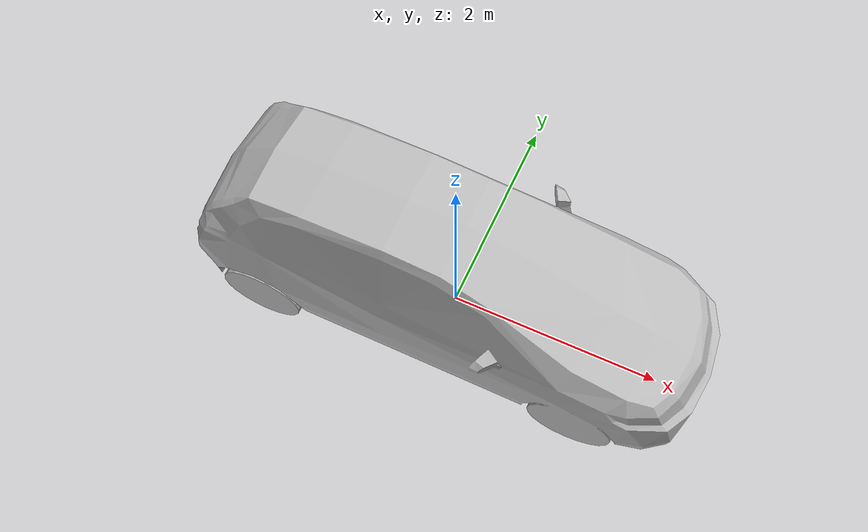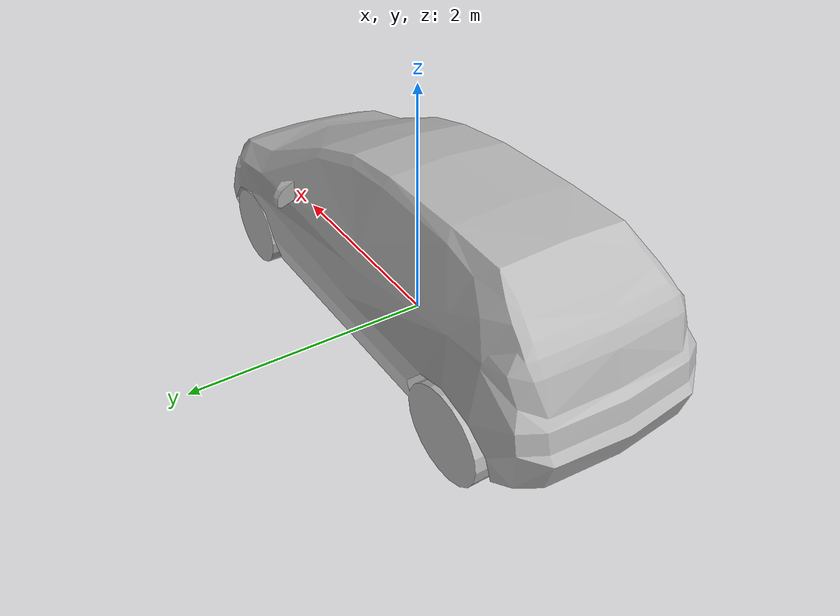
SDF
<?xml version="1.0"?>
<sdf version="1.9"><model name="hatchback"><static>true</static><link name="body">
<visual name="body"><geometry><mesh><uri>meshes/car_scaled.obj</uri></mesh></geometry></visual>
<collision name="body"><geometry><mesh><uri>meshes/car_scaled.obj</uri></mesh></geometry></collision>
</link></model></sdf>
